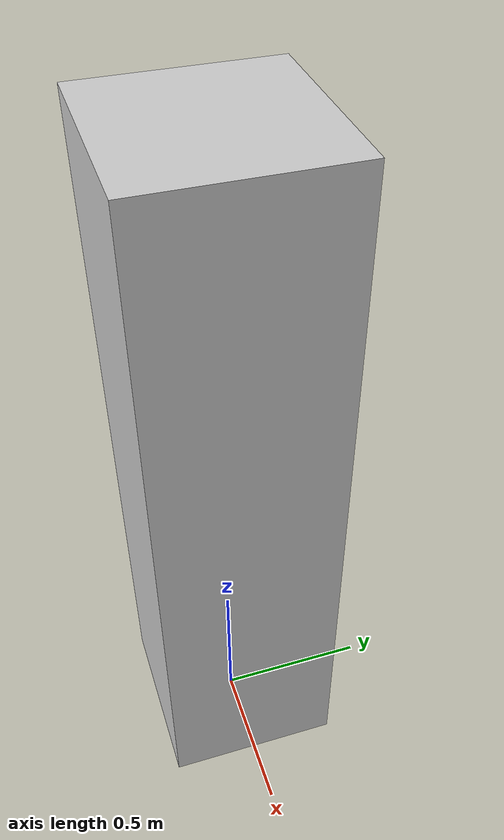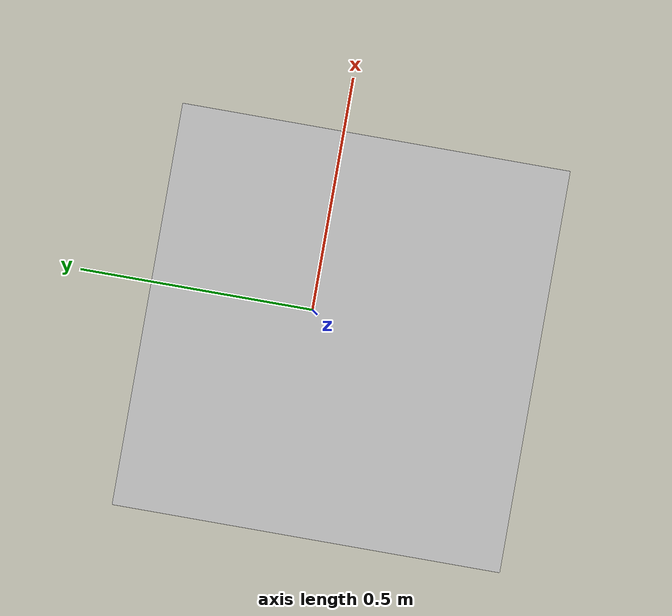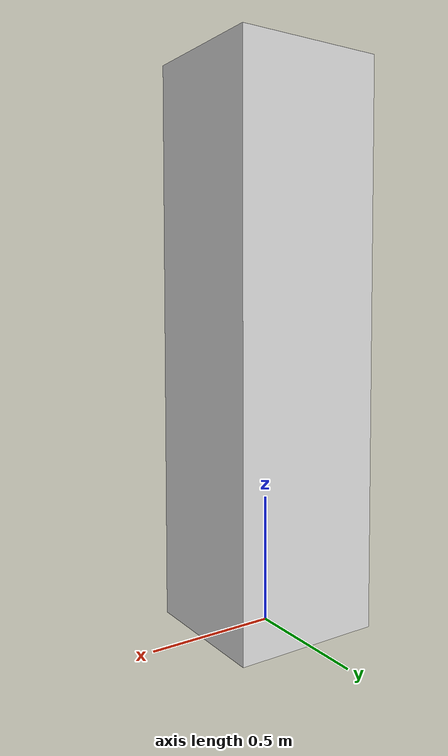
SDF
<?xml version="1.0"?>
<sdf version="1.6">
  <model name="rwc2013/kitchen_cabinet">
    <link name="1_link">
      <collision name="1_col">
        <geometry>
          <box>
            <size>0.59 0.57 2.2</size>
          </box>
        </geometry>
      </collision>
      <visual name="1_vis">
        <geometry>
          <box>
            <size>0.59 0.57 2.2</size>
          </box>
        </geometry>
        <material>
          <ambient>0.8 0.8 0.8 1</ambient>
        </material>
      </visual>
      <pose>0.0 0.0 1.1 0 0 0</pose>
    </link>
    <static>true</static>
  </model>
</sdf>
